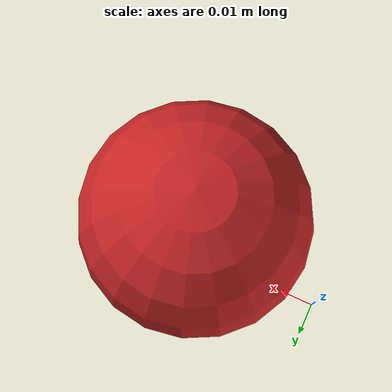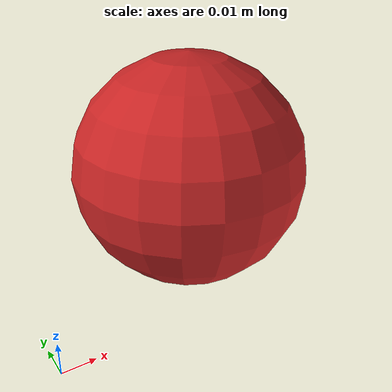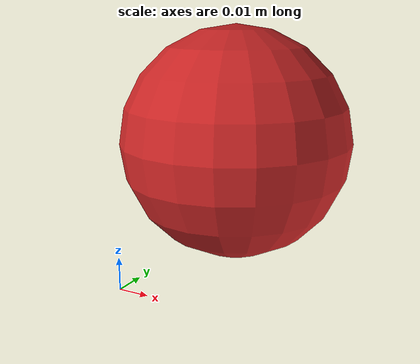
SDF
<?xml version="1.0" ?>
<sdf version="1.7">
  <model name='red_ball'>
    <link name='link'>
      <pose>0.04 0 0.05 0 0 0</pose>
      <inertial>
        <mass>0.001</mass>
        <inertia>
          <ixx>0.0001</ixx>
          <iyy>0.0001</iyy>
          <izz>0.0001</izz>
        </inertia>
      </inertial>
      <visual name="ball_visual">
        <geometry>
          <sphere>
            <radius>0.03</radius>
          </sphere>
        </geometry>
        <material>
          <script>
            <uri>file://media/materials/scripts/gazebo.material</uri>
            <name>Gazebo/Red</name>
          </script>
        </material>
      </visual>
      <collision name="ball_collision">
        <geometry>
          <sphere>
            <radius>0.03</radius>
          </sphere>
        </geometry>
      </collision>
    </link>
  </model>
</sdf>
<!-- vim: set et fenc=utf-8 ff=unix sts=0 sw=2 ts=2 : -->
